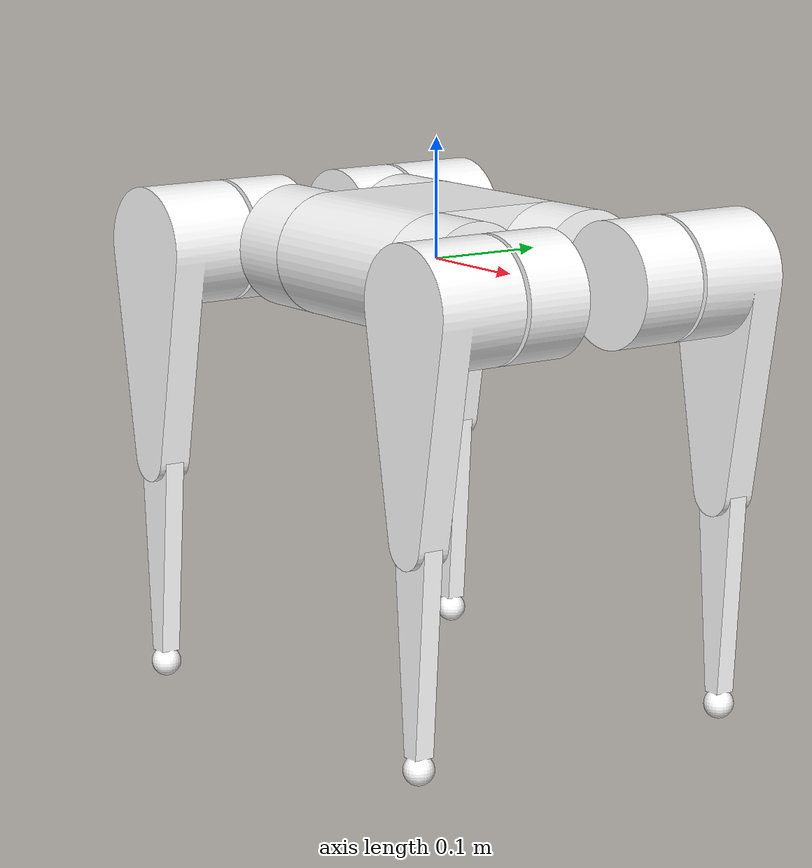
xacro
<?xml version="1.0"?>
<robot name="zebra" xmlns:xacro="http://ros.org/wiki/xacro">

  <!-- Joint Limits -->
  <xacro:property name="joint_effort_limit" value="17"/>
  <xacro:property name="joint_velocity_limit" value="10"/>

  <!-- Dependencies -->
  <xacro:include filename="$(find zebra_description)/urdf/materials.xacro"/>
  <xacro:include filename="$(find zebra_description)/urdf/common.xacro"/>
  <xacro:include filename="$(find zebra_description)/urdf/base/base.urdf.xacro"/>
  <xacro:include filename="$(find zebra_description)/urdf/leg/leg_type_a.urdf.xacro"/>
  <xacro:include filename="$(find zebra_description)/urdf/leg/leg_type_b.urdf.xacro"/>

  <!-- Link & Joint -->
  <link name="world"/>

  <xacro:base parent="world">
    <origin xyz="0 0 0" rpy="0 0 0" />
  </xacro:base>

  <xacro:leg_type_a prefix="front_left_" parent="base/front_left_link_tip">
    <origin xyz="0 0 0" rpy="0 0 0" />
  </xacro:leg_type_a>

  <xacro:leg_type_b prefix="front_right_" parent="base/front_right_link_tip">
    <origin xyz="0 0 0" rpy="0 0 0" />
  </xacro:leg_type_b>

  <xacro:leg_type_b prefix="hind_left_" parent="base/hind_left_link_tip">
    <origin xyz="0 0 0" rpy="0 0 0" />
  </xacro:leg_type_b>

  <xacro:leg_type_a prefix="hind_right_" parent="base/hind_right_link_tip">
    <origin xyz="0 0 0" rpy="0 0 0" />
  </xacro:leg_type_a>

</robot>

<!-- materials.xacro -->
<robot>

  <material name="black">
    <color rgba="0.0 0.0 0.0 1.0"/>
  </material>

  <material name="blue">
    <color rgba="0.0 0.0 0.8 1.0"/>
  </material>

  <material name="green">
    <color rgba="0.0 0.8 0.0 1.0"/>
  </material>

  <material name="grey">
    <color rgba="0.2 0.2 0.2 1.0"/>
  </material>

  <material name="light_grey">
    <color rgba="0.5 0.5 0.5 1.0"/>
  </material>

  <material name="dark_grey">
    <color rgba="0.3 0.3 0.3 1.0"/>
  </material>

  <material name="orange">
    <color rgba="${255/255} ${108/255} ${10/255} 1.0"/>
  </material>

  <material name="brown">
    <color rgba="${222/255} ${207/255} ${195/255} 1.0"/>
  </material>

  <material name="red">
    <color rgba="0.8 0.0 0.0 1.0"/>
  </material>

  <material name="white">
    <color rgba="1.0 1.0 1.0 1.0"/>
  </material>

  <material name="clear_color">
    <color rgba="0.5 0.5 0.5 0.1"/>
  </material>

</robot>

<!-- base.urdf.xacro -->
<robot xmlns:xacro="http://ros.org/wiki/xacro">

  <!-- Constants -->
  <xacro:property name="visual_mesh_scale" value="1.0 1.0 1.0"/>
  <xacro:property name="collision_mesh_scale" value="1.0 1.0 1.0"/>

  <xacro:property name="leg_root_position_x" value="0.075"/>
  <xacro:property name="leg_root_position_y" value="0.056"/>

  <!-- Link & Joint -->
  <xacro:macro name="base" params="parent *joint_origin">

    <joint name="base/root" type="fixed">
      <xacro:insert_block name="joint_origin"/>
      <parent link="${parent}"/>
      <child link="base/base_link"/>
    </joint>

    <link name="base/base_link">
      <visual>
        <geometry>
          <mesh filename="package://zebra_description/meshes/base/base.stl" scale="${visual_mesh_scale}"/>
        </geometry>
        <material name="white"/>
      </visual>
      <collision>
        <geometry>
          <mesh filename="package://zebra_description/meshes/base/base.stl" scale="${visual_mesh_scale}"/>
        </geometry>
      </collision>
    </link>

    <joint name="base/front_left_joint_tip" type="fixed">
      <parent link="base/base_link"/>
      <child link="base/front_left_link_tip"/>
      <origin xyz="${leg_root_position_x} ${leg_root_position_y} 0" rpy="0 0 0"/>
    </joint>
    <link name="base/front_left_link_tip"/>

    <joint name="base/front_right_joint_tip" type="fixed">
      <parent link="base/base_link"/>
      <child link="base/front_right_link_tip"/>
      <origin xyz="${leg_root_position_x} -${leg_root_position_y} 0" rpy="0 0 0"/>
    </joint>
    <link name="base/front_right_link_tip"/>

    <joint name="base/hind_left_joint_tip" type="fixed">
      <parent link="base/base_link"/>
      <child link="base/hind_left_link_tip"/>
      <origin xyz="-${leg_root_position_x} ${leg_root_position_y} 0" rpy="0 0 ${180*M_PI/180}"/>
    </joint>
    <link name="base/hind_left_link_tip"/>

    <joint name="base/hind_right_joint_tip" type="fixed">
      <parent link="base/base_link"/>
      <child link="base/hind_right_link_tip"/>
      <origin xyz="-${leg_root_position_x} -${leg_root_position_y} 0" rpy="0 0 ${180*M_PI/180}"/>
    </joint>
    <link name="base/hind_right_link_tip"/>

  </xacro:macro>
</robot>

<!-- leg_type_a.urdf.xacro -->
<robot xmlns:xacro="http://ros.org/wiki/xacro">

  <!-- Constants -->
  <xacro:property name="visual_mesh_scale" value="1.0 1.0 1.0"/>

  <!-- Link & Joint -->
  <xacro:macro name="leg_type_a" params="prefix parent *joint_origin">

    <joint name="${prefix}leg/root" type="fixed">
      <xacro:insert_block name="joint_origin" />
      <parent link="${parent}" />
      <child link="${prefix}leg/link_0" />
    </joint>

    <link name="${prefix}leg/link_0">
      <visual>
        <geometry>
          <mesh filename="package://zebra_description/meshes/leg/link0.stl" scale="${visual_mesh_scale}"/>
        </geometry>
        <material name="white"/>
      </visual>
    </link>

    <joint name="${prefix}leg/joint1" type="revolute">
      <parent link="${prefix}leg/link_0"/>
      <child link="${prefix}leg/link1"/>
      <origin xyz="0.112 0 0" rpy="${90*M_PI/180} 0 ${90*M_PI/180}"/>
      <axis xyz="0 0 1"/>
      <limit lower="${-25*M_PI/180}" upper="${25*M_PI/180}" effort="${joint_effort_limit}"
              velocity="${joint_velocity_limit}"/>
    </joint>

    <link name="${prefix}leg/link1">
      <visual>
        <geometry>
          <mesh filename="package://zebra_description/meshes/leg/link1.stl" scale="${visual_mesh_scale}"/>
        </geometry>
        <material name="white"/>
      </visual>
    </link>

    <joint name="${prefix}leg/joint2" type="revolute">
      <parent link="${prefix}leg/link1"/>
      <child link="${prefix}leg/link2"/>
      <origin xyz="0.0956 0 0" rpy="${-90*M_PI/180} 0 ${-90*M_PI/180}"/>
      <axis xyz="0 0 1"/>
      <limit lower="${-150*M_PI/180}" upper="${150*M_PI/180}" effort="${joint_effort_limit}"
              velocity="${joint_velocity_limit}"/>
    </joint>

    <link name="${prefix}leg/link2">
      <visual>
        <geometry>
          <mesh filename="package://zebra_description/meshes/leg/link2.stl" scale="${visual_mesh_scale}"/>
        </geometry>
        <material name="white"/>
      </visual>
    </link>

    <joint name="${prefix}leg/joint3" type="revolute">
      <parent link="${prefix}leg/link2"/>
      <child link="${prefix}leg/link3"/>
      <origin xyz="0.18 0 0" rpy="0 0 0"/>
      <axis xyz="0 0 1"/>
      <limit lower="${-135*M_PI/180}" upper="${135*M_PI/180}" effort="${joint_effort_limit}"
              velocity="${joint_velocity_limit}"/>
    </joint>

    <link name="${prefix}leg/link3">
      <visual>
        <geometry>
          <mesh filename="package://zebra_description/meshes/leg/link3.stl" scale="${visual_mesh_scale}"/>
        </geometry>
        <material name="white"/>
      </visual>
    </link>

    <joint name="${prefix}leg/joint_tip" type="fixed">
      <parent link="${prefix}leg/link3"/>
      <child link="${prefix}leg/link_tip"/>
      <origin xyz="0.18 0 0" rpy="0 0 0"/>
    </joint>

    <link name="${prefix}leg/link_tip"/>

  </xacro:macro>
</robot>

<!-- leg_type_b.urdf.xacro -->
<robot xmlns:xacro="http://ros.org/wiki/xacro">

  <!-- Constants -->
  <xacro:property name="visual_mesh_scale" value="1.0 1.0 1.0"/>

  <!-- Link & Joint -->
  <xacro:macro name="leg_type_b" params="prefix parent *joint_origin">

    <joint name="${prefix}leg/root" type="fixed">
      <xacro:insert_block name="joint_origin" />
      <parent link="${parent}" />
      <child link="${prefix}leg/link_0" />
    </joint>

    <link name="${prefix}leg/link_0">
      <visual>
        <geometry>
          <mesh filename="package://zebra_description/meshes/leg/link0.stl" scale="${visual_mesh_scale}"/>
        </geometry>
        <material name="white"/>
      </visual>
    </link>

    <joint name="${prefix}leg/joint1" type="revolute">
      <parent link="${prefix}leg/link_0"/>
      <child link="${prefix}leg/link1"/>
      <origin xyz="0.112 0 0" rpy="${-90*M_PI/180} 0 ${-90*M_PI/180}"/>
      <axis xyz="0 0 1"/>
      <limit lower="${-25*M_PI/180}" upper="${25*M_PI/180}" effort="${joint_effort_limit}"
              velocity="${joint_velocity_limit}"/>
    </joint>

    <link name="${prefix}leg/link1">
      <visual>
        <geometry>
          <mesh filename="package://zebra_description/meshes/leg/link1.stl" scale="${visual_mesh_scale}"/>
        </geometry>
        <material name="white"/>
      </visual>
    </link>

    <joint name="${prefix}leg/joint2" type="revolute">
      <parent link="${prefix}leg/link1"/>
      <child link="${prefix}leg/link2"/>
      <origin xyz="0.0956 0 0" rpy="${90*M_PI/180} 0 ${90*M_PI/180}"/>
      <axis xyz="0 0 1"/>
      <limit lower="${-150*M_PI/180}" upper="${150*M_PI/180}" effort="${joint_effort_limit}"
              velocity="${joint_velocity_limit}"/>
    </joint>

    <link name="${prefix}leg/link2">
      <visual>
        <geometry>
          <mesh filename="package://zebra_description/meshes/leg/link2.stl" scale="${visual_mesh_scale}"/>
        </geometry>
        <material name="white"/>
      </visual>
    </link>

    <joint name="${prefix}leg/joint3" type="revolute">
      <parent link="${prefix}leg/link2"/>
      <child link="${prefix}leg/link3"/>
      <origin xyz="0.18 0 0" rpy="0 0 0"/>
      <axis xyz="0 0 1"/>
      <limit lower="${-135*M_PI/180}" upper="${135*M_PI/180}" effort="${joint_effort_limit}"
              velocity="${joint_velocity_limit}"/>
    </joint>

    <link name="${prefix}leg/link3">
      <visual>
        <geometry>
          <mesh filename="package://zebra_description/meshes/leg/link3.stl" scale="${visual_mesh_scale}"/>
        </geometry>
        <material name="white"/>
      </visual>
    </link>

    <joint name="${prefix}leg/joint_tip" type="fixed">
      <parent link="${prefix}leg/link3"/>
      <child link="${prefix}leg/link_tip"/>
      <origin xyz="0.18 0 0" rpy="0 0 0"/>
    </joint>

    <link name="${prefix}leg/link_tip"/>

  </xacro:macro>
</robot>
